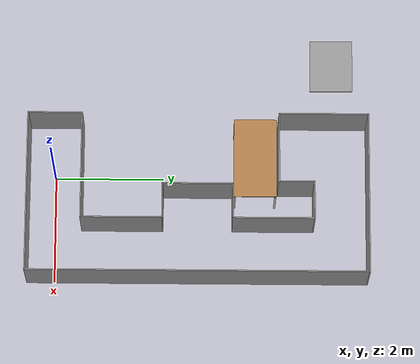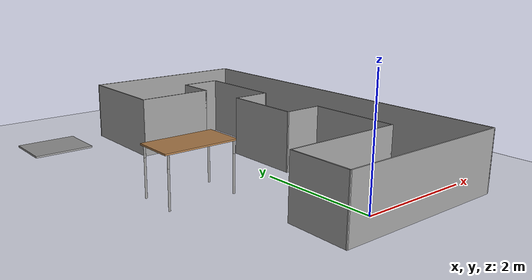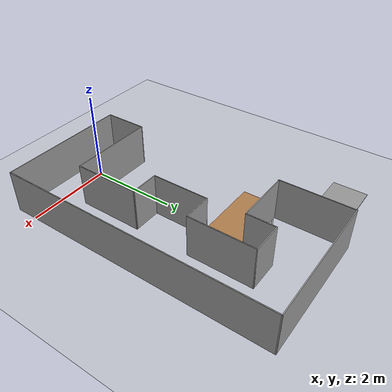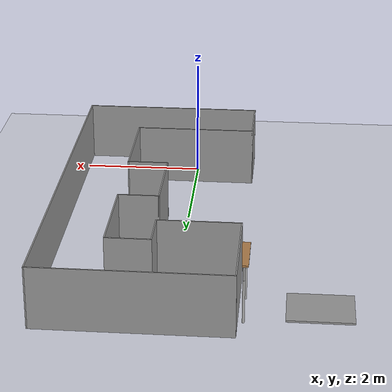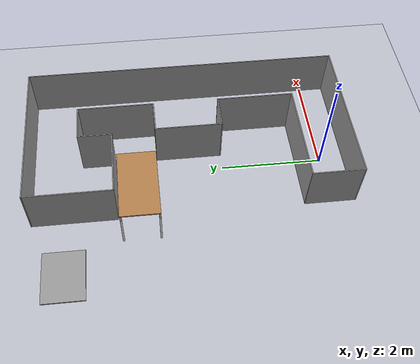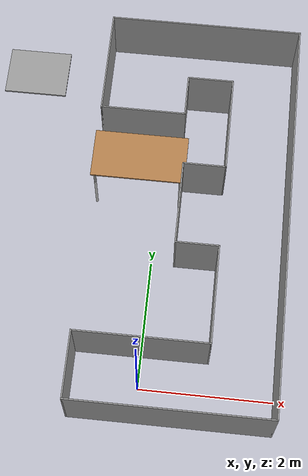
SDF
<sdf version="1.7">
 <world name="default">
  <light name="sun" type="directional">
   <pose>0 0 10 0 -0 0</pose>
   <diffuse>0.8 0.8 0.8 1</diffuse>
   <specular>0.2 0.2 0.2 1</specular>
   <attenuation>
    <range>1000</range>
    <constant>0.9</constant>
    <linear>0.01</linear>
    <quadratic>0.001</quadratic>
   </attenuation>
   <direction>-0.5 0.1 -0.9</direction>
   <spot><inner_angle>0</inner_angle><outer_angle>0</outer_angle><falloff>0</falloff></spot>
  </light>
  <model name="ground_plane">
   <static>1</static>
   <link name="link">
    <collision name="collision">
     <geometry><plane><normal>0 0 1</normal><size>100 100</size></plane></geometry>
     <surface><friction><ode><mu>100</mu><mu2>50</mu2></ode></friction></surface>
    </collision>
    <visual name="visual">
     <cast_shadows>0</cast_shadows>
     <geometry><plane><normal>0 0 1</normal><size>100 100</size></plane></geometry>
     <material>
      <script><uri>file://media/materials/scripts/gazebo.material</uri><name>Gazebo/Grey</name></script>
     </material>
    </visual>
   </link>
  </model>
  <gravity>0 0 -9.8</gravity>
  <magnetic_field>6e-06 2.3e-05 -4.2e-05</magnetic_field>
  <atmosphere type="adiabatic"/>
  <physics type="ode">
   <max_step_size>0.001</max_step_size>
   <real_time_factor>1</real_time_factor>
   <real_time_update_rate>1000</real_time_update_rate>
  </physics>
  <scene><ambient>0.4 0.4 0.4 1</ambient><background>0.7 0.7 0.7 1</background><shadows>1</shadows></scene>
  <audio><device>default</device></audio>
  <spherical_coordinates>
   <surface_model>EARTH_WGS84</surface_model>
   <latitude_deg>0</latitude_deg>
   <longitude_deg>0</longitude_deg>
   <elevation>0</elevation>
   <heading_deg>0</heading_deg>
  </spherical_coordinates>
  <model name="headingfixedcbf">
   <pose>0.5 2.65 0 0 -0 0</pose>
   <link name="Wall_106">
    <collision name="Wall_106_Collision">
     <geometry><box><size>3.02 0.02 1</size></box></geometry>
     <pose>0 0 0.5 0 -0 0</pose>
    </collision>
    <visual name="Wall_106_Visual">
     <pose>0 0 0.5 0 -0 0</pose>
     <geometry><box><size>3.02 0.02 1</size></box></geometry>
     <material>
      <script><uri>file://media/materials/scripts/gazebo.material</uri><name>Gazebo/Grey</name></script>
      <ambient>1 1 1 1</ambient>
     </material>
     <meta><layer>0</layer></meta>
    </visual>
    <pose>-0 -3.15 0 0 -0 0</pose>
   </link>
   <link name="Wall_108">
    <collision name="Wall_108_Collision">
     <geometry><box><size>1.02 0.02 1</size></box></geometry>
     <pose>0 0 0.5 0 -0 0</pose>
    </collision>
    <visual name="Wall_108_Visual">
     <pose>0 0 0.5 0 -0 0</pose>
     <geometry><box><size>1.02 0.02 1</size></box></geometry>
     <material>
      <script><uri>file://media/materials/scripts/gazebo.material</uri><name>Gazebo/Grey</name></script>
      <ambient>1 1 1 1</ambient>
     </material>
     <meta><layer>0</layer></meta>
    </visual>
    <pose>-1.5 -2.65 0 0 -0 1.5708</pose>
   </link>
   <link name="Wall_110">
    <collision name="Wall_110_Collision">
     <geometry><box><size>2.02 0.02 1</size></box></geometry>
     <pose>0 0 0.5 0 -0 0</pose>
    </collision>
    <visual name="Wall_110_Visual">
     <pose>0 0 0.5 0 -0 0</pose>
     <geometry><box><size>2.02 0.02 1</size></box></geometry>
     <material>
      <script><uri>file://media/materials/scripts/gazebo.material</uri><name>Gazebo/Grey</name></script>
      <ambient>1 1 1 1</ambient>
     </material>
     <meta><layer>0</layer></meta>
    </visual>
    <pose>-0.5 -2.15 0 0 -0 0</pose>
   </link>
   <link name="Wall_112">
    <collision name="Wall_112_Collision">
     <geometry><box><size>1.52 0.02 1</size></box></geometry>
     <pose>0 0 0.5 0 -0 0</pose>
    </collision>
    <visual name="Wall_112_Visual">
     <pose>0 0 0.5 0 -0 0</pose>
     <geometry><box><size>1.52 0.02 1</size></box></geometry>
     <material>
      <script><uri>file://media/materials/scripts/gazebo.material</uri><name>Gazebo/Grey</name></script>
      <ambient>1 1 1 1</ambient>
     </material>
     <meta><layer>0</layer></meta>
    </visual>
    <pose>0.5 -1.4 0 0 -0 1.5708</pose>
   </link>
   <link name="Wall_114">
    <collision name="Wall_114_Collision">
     <geometry><box><size>0.67 0.02 1</size></box></geometry>
     <pose>0 0 0.5 0 -0 0</pose>
    </collision>
    <visual name="Wall_114_Visual">
     <pose>0 0 0.5 0 -0 0</pose>
     <geometry><box><size>0.67 0.02 1</size></box></geometry>
     <material>
      <script><uri>file://media/materials/scripts/gazebo.material</uri><name>Gazebo/Grey</name></script>
      <ambient>1 1 1 1</ambient>
     </material>
     <meta><layer>0</layer></meta>
    </visual>
    <pose>0.175 -0.65 0 0 -0 3.14159</pose>
   </link>
   <link name="Wall_116">
    <collision name="Wall_116_Collision">
     <geometry><box><size>1.32 0.02 1</size></box></geometry>
     <pose>0 0 0.5 0 -0 0</pose>
    </collision>
    <visual name="Wall_116_Visual">
     <pose>0 0 0.5 0 -0 0</pose>
     <geometry><box><size>1.32 0.02 1</size></box></geometry>
     <material>
      <script><uri>file://media/materials/scripts/gazebo.material</uri><name>Gazebo/Grey</name></script>
      <ambient>1 1 1 1</ambient>
     </material>
     <meta><layer>0</layer></meta>
    </visual>
    <pose>-0.15 0 0 0 -0 1.5708</pose>
   </link>
   <link name="Wall_118">
    <collision name="Wall_118_Collision">
     <geometry><box><size>0.67 0.02 1</size></box></geometry>
     <pose>0 0 0.5 0 -0 0</pose>
    </collision>
    <visual name="Wall_118_Visual">
     <pose>0 0 0.5 0 -0 0</pose>
     <geometry><box><size>0.67 0.02 1</size></box></geometry>
     <material>
      <script><uri>file://media/materials/scripts/gazebo.material</uri><name>Gazebo/Grey</name></script>
      <ambient>1 1 1 1</ambient>
     </material>
     <meta><layer>0</layer></meta>
    </visual>
    <pose>0.175 0.65 0 0 -0 0</pose>
   </link>
   <link name="Wall_120">
    <collision name="Wall_120_Collision">
     <geometry><box><size>1.52 0.02 1</size></box></geometry>
     <pose>0 0 0.5 0 -0 0</pose>
    </collision>
    <visual name="Wall_120_Visual">
     <pose>0 0 0.5 0 -0 0</pose>
     <geometry><box><size>1.52 0.02 1</size></box></geometry>
     <material>
      <script><uri>file://media/materials/scripts/gazebo.material</uri><name>Gazebo/Grey</name></script>
      <ambient>1 1 1 1</ambient>
     </material>
     <meta><layer>0</layer></meta>
    </visual>
    <pose>0.5 1.4 0 0 -0 1.5708</pose>
   </link>
   <link name="Wall_124">
    <collision name="Wall_124_Collision">
     <geometry><box><size>6.32 0.02 1</size></box></geometry>
     <pose>0 0 0.5 0 -0 0</pose>
    </collision>
    <visual name="Wall_124_Visual">
     <pose>0 0 0.5 0 -0 0</pose>
     <geometry><box><size>6.32 0.02 1</size></box></geometry>
     <material>
      <script><uri>file://media/materials/scripts/gazebo.material</uri><name>Gazebo/Grey</name></script>
      <ambient>1 1 1 1</ambient>
     </material>
     <meta><layer>0</layer></meta>
    </visual>
    <pose>1.5 0 0 0 -0 1.5708</pose>
   </link>
   <link name="Wall_126">
    <collision name="Wall_126_Collision">
     <geometry><box><size>3.02 0.02 1</size></box></geometry>
     <pose>0 0 0.5 0 -0 0</pose>
    </collision>
    <visual name="Wall_126_Visual">
     <pose>0 0 0.5 0 -0 0</pose>
     <geometry><box><size>3.02 0.02 1</size></box></geometry>
     <material>
      <script><uri>file://media/materials/scripts/gazebo.material</uri><name>Gazebo/Grey</name></script>
      <ambient>1 1 1 1</ambient>
     </material>
     <meta><layer>0</layer></meta>
    </visual>
    <pose>-0 3.15 0 0 -0 3.14159</pose>
   </link>
   <link name="Wall_129">
    <collision name="Wall_129_Collision">
     <geometry><box><size>1.67 0.02 1</size></box></geometry>
     <pose>0 0 0.5 0 -0 0</pose>
    </collision>
    <visual name="Wall_129_Visual">
     <pose>0 0 0.5 0 -0 0</pose>
     <geometry><box><size>1.67 0.02 1</size></box></geometry>
     <material>
      <script><uri>file://media/materials/scripts/gazebo.material</uri><name>Gazebo/Grey</name></script>
      <ambient>1 1 1 1</ambient>
     </material>
     <meta><layer>0</layer></meta>
    </visual>
    <pose>-1.5 2.325 0 0 -0 -1.5708</pose>
   </link>
   <link name="Wall_131">
    <collision name="Wall_131_Collision">
     <geometry><box><size>1.32 0.02 1</size></box></geometry>
     <pose>0 0 0.5 0 -0 0</pose>
    </collision>
    <visual name="Wall_131_Visual">
     <pose>0 0 0.5 0 -0 0</pose>
     <geometry><box><size>1.32 0.02 1</size></box></geometry>
     <material>
      <script><uri>file://media/materials/scripts/gazebo.material</uri><name>Gazebo/Grey</name></script>
      <ambient>1 1 1 1</ambient>
     </material>
     <meta><layer>0</layer></meta>
    </visual>
    <pose>-0.85 1.5 0 0 -0 0</pose>
   </link>
   <link name="Wall_133">
    <collision name="Wall_133_Collision">
     <geometry><box><size>0.67 0.02 1</size></box></geometry>
     <pose>0 0 0.5 0 -0 0</pose>
    </collision>
    <visual name="Wall_133_Visual">
     <pose>0 0 0.5 0 -0 0</pose>
     <geometry><box><size>0.67 0.02 1</size></box></geometry>
     <material>
      <script><uri>file://media/materials/scripts/gazebo.material</uri><name>Gazebo/Grey</name></script>
      <ambient>1 1 1 1</ambient>
     </material>
     <meta><layer>0</layer></meta>
    </visual>
    <pose>-0.2 1.825 0 0 -0 1.5708</pose>
   </link>
   <link name="Wall_135">
    <collision name="Wall_135_Collision">
     <geometry><box><size>0.72 0.02 1</size></box></geometry>
     <pose>0 0 0.5 0 -0 0</pose>
    </collision>
    <visual name="Wall_135_Visual">
     <pose>0 0 0.5 0 -0 0</pose>
     <geometry><box><size>0.72 0.02 1</size></box></geometry>
     <material>
      <script><uri>file://media/materials/scripts/gazebo.material</uri><name>Gazebo/Grey</name></script>
      <ambient>1 1 1 1</ambient>
     </material>
     <meta><layer>0</layer></meta>
    </visual>
    <pose>0.15 2.15 0 0 -0 0</pose>
   </link>
   <static>1</static>
  </model>
  <model name="table">
   <static>1</static>
   <link name="link">
    <collision name="surface">
     <pose>0 0 1 0 -0 0</pose>
     <geometry><box><size>1.5 0.8 0.03</size></box></geometry>
     <surface><friction><ode><mu>0.6</mu><mu2>0.6</mu2></ode></friction></surface>
    </collision>
    <visual name="visual1">
     <pose>0 0 1 0 -0 0</pose>
     <geometry><box><size>1.5 0.8 0.03</size></box></geometry>
     <material>
      <script><uri>file://media/materials/scripts/gazebo.material</uri><name>Gazebo/Wood</name></script>
     </material>
    </visual>
    <collision name="front_left_leg">
     <pose>0.68 0.38 0.5 0 -0 0</pose>
     <geometry><cylinder><radius>0.02</radius><length>1</length></cylinder></geometry>
    </collision>
    <visual name="front_left_leg">
     <pose>0.68 0.38 0.5 0 -0 0</pose>
     <geometry><cylinder><radius>0.02</radius><length>1</length></cylinder></geometry>
     <material>
      <script><uri>file://media/materials/scripts/gazebo.material</uri><name>Gazebo/Grey</name></script>
     </material>
    </visual>
    <collision name="front_right_leg">
     <pose>0.68 -0.38 0.5 0 -0 0</pose>
     <geometry><cylinder><radius>0.02</radius><length>1</length></cylinder></geometry>
    </collision>
    <visual name="front_right_leg">
     <pose>0.68 -0.38 0.5 0 -0 0</pose>
     <geometry><cylinder><radius>0.02</radius><length>1</length></cylinder></geometry>
     <material>
      <script><uri>file://media/materials/scripts/gazebo.material</uri><name>Gazebo/Grey</name></script>
     </material>
    </visual>
    <collision name="back_right_leg">
     <pose>-0.68 -0.38 0.5 0 -0 0</pose>
     <geometry><cylinder><radius>0.02</radius><length>1</length></cylinder></geometry>
    </collision>
    <visual name="back_right_leg">
     <pose>-0.68 -0.38 0.5 0 -0 0</pose>
     <geometry><cylinder><radius>0.02</radius><length>1</length></cylinder></geometry>
     <material>
      <script><uri>file://media/materials/scripts/gazebo.material</uri><name>Gazebo/Grey</name></script>
     </material>
    </visual>
    <collision name="back_left_leg">
     <pose>-0.68 0.38 0.5 0 -0 0</pose>
     <geometry><cylinder><radius>0.02</radius><length>1</length></cylinder></geometry>
    </collision>
    <visual name="back_left_leg">
     <pose>-0.68 0.38 0.5 0 -0 0</pose>
     <geometry><cylinder><radius>0.02</radius><length>1</length></cylinder></geometry>
     <material>
      <script><uri>file://media/materials/scripts/gazebo.material</uri><name>Gazebo/Grey</name></script>
     </material>
    </visual>
   </link>
   <pose>-0.36137 3.72014 -0.757865 0 -0 0</pose>
  </model>
  <model name="board">
   <link name="link_0">
    <inertial>
     <mass>1</mass>
     <inertia>
      <ixx>0.166667</ixx>
      <ixy>0</ixy>
      <ixz>0</ixz>
      <iyy>0.166667</iyy>
      <iyz>0</iyz>
      <izz>0.166667</izz>
     </inertia>
    </inertial>
    <visual name="visual">
     <geometry><box><size>1 0.8 0.03</size></box></geometry>
     <material>
      <lighting>1</lighting>
      <script><uri>file://media/materials/scripts/gazebo.material</uri><name>Gazebo/Grey</name></script>
      <shader type="pixel"><normal_map>__default__</normal_map></shader>
      <ambient>0.3 0.3 0.3 1</ambient>
      <diffuse>0.7 0.7 0.7 1</diffuse>
      <specular>0.01 0.01 0.01 1</specular>
      <emissive>0 0 0 1</emissive>
     </material>
    </visual>
    <collision name="collision">
     <geometry><box><size>1 0.8 0.03</size></box></geometry>
     <surface>
      <friction>
       <ode><mu>1</mu><mu2>1</mu2><fdir1>0 0 0</fdir1><slip1>0</slip1><slip2>0</slip2></ode>
       <torsional>
        <coefficient>1</coefficient>
        <patch_radius>0</patch_radius>
        <surface_radius>0</surface_radius>
        <use_patch_radius>1</use_patch_radius>
        <ode><slip>0</slip></ode>
       </torsional>
      </friction>
      <bounce><restitution_coefficient>0</restitution_coefficient><threshold>1e+06</threshold></bounce>
      <contact>
       <collide_without_contact>0</collide_without_contact>
       <collide_without_contact_bitmask>1</collide_without_contact_bitmask>
       <collide_bitmask>1</collide_bitmask>
       <ode>
        <soft_cfm>0</soft_cfm>
        <soft_erp>0.2</soft_erp>
        <kp>1e+13</kp>
        <kd>1</kd>
        <max_vel>0.01</max_vel>
        <min_depth>0</min_depth>
       </ode>
       <bullet>
        <split_impulse>1</split_impulse>
        <split_impulse_penetration_threshold>-0.01</split_impulse_penetration_threshold>
        <soft_cfm>0</soft_cfm>
        <soft_erp>0.2</soft_erp>
        <kp>1e+13</kp>
        <kd>1</kd>
       </bullet>
      </contact>
     </surface>
    </collision>
   </link>
   <static>0</static>
   <pose>-2.20499 5.15179 0.156046 0 -0 0</pose>
  </model>
 </world>
</sdf>
